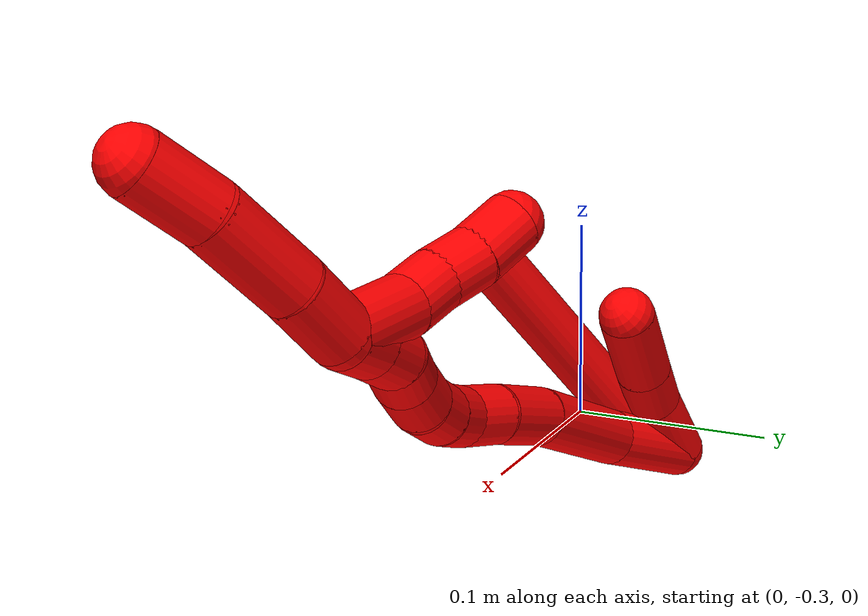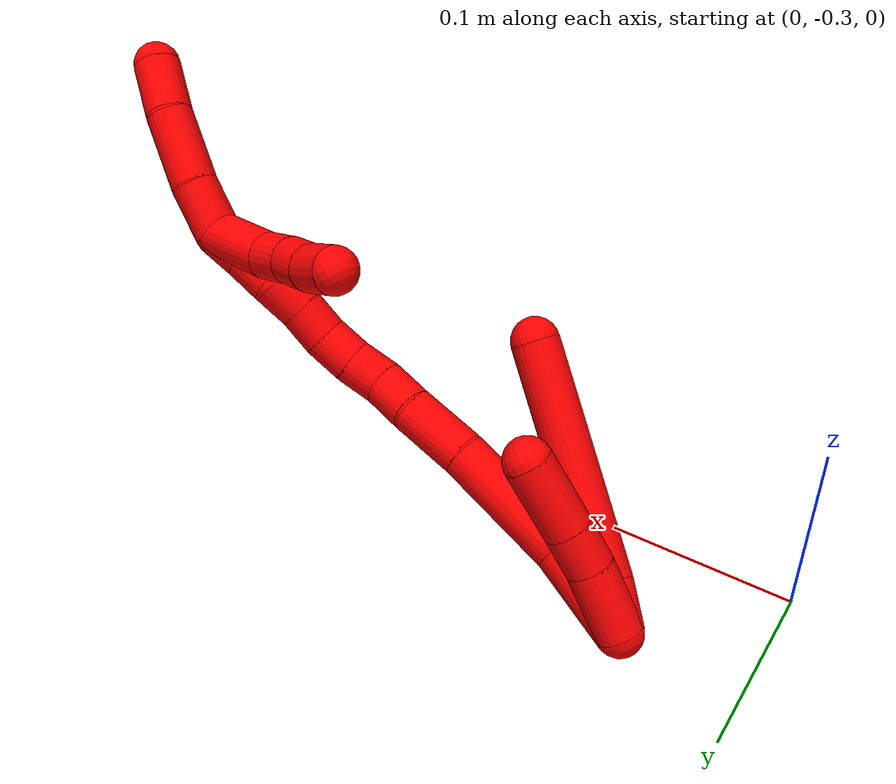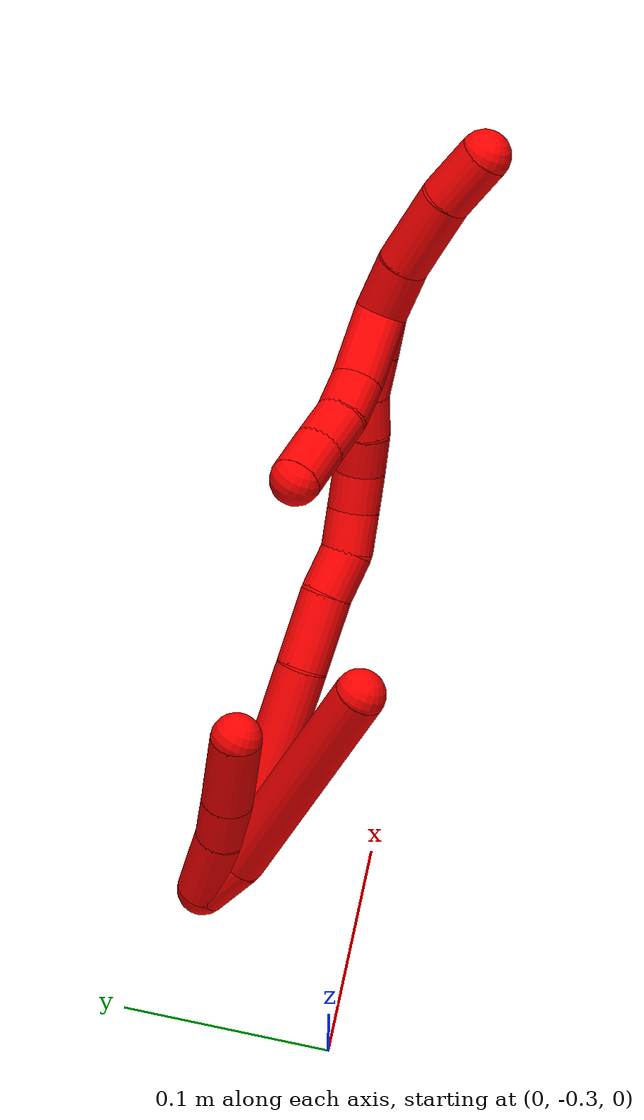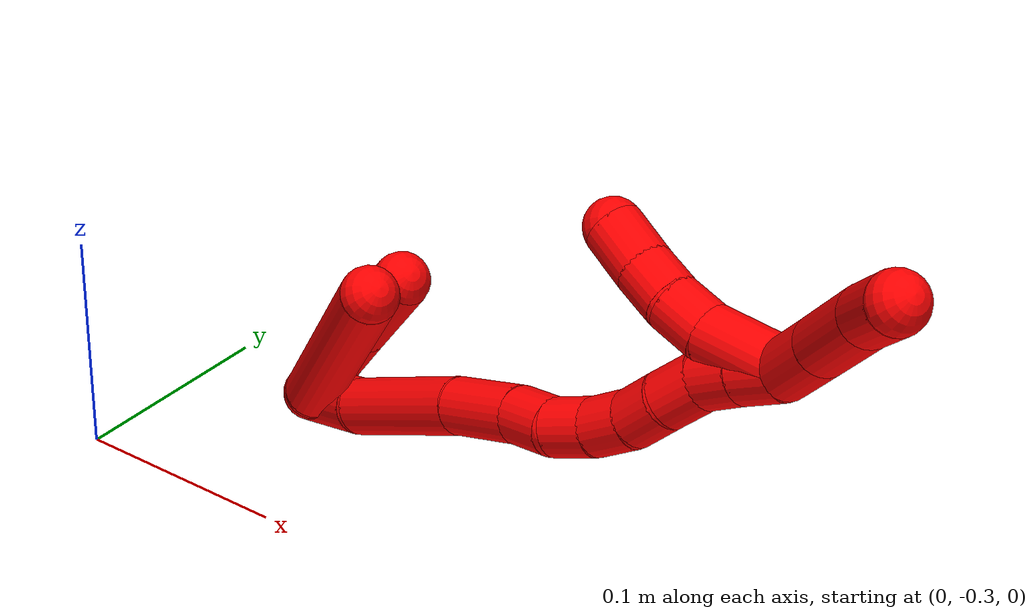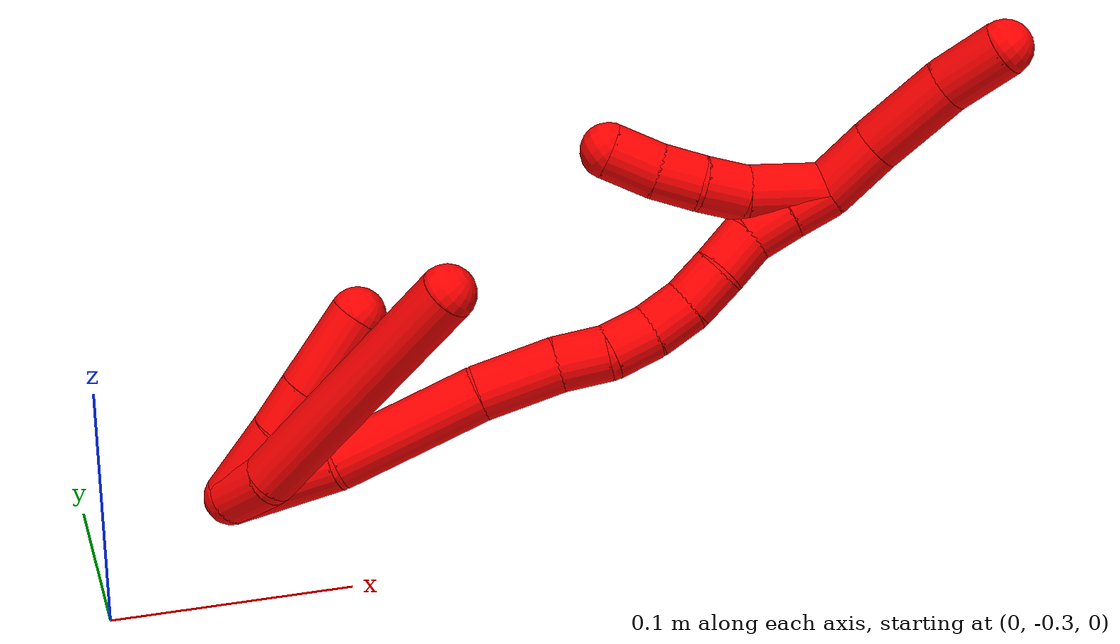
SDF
<sdf version="1.7">
 <world name="default">
  <model name="2">
   <static>0</static>
   <link name="2">
    <collision name="collision-cylinder-e_1_2_8">
     <pose>-0.002316 -0.003722 0.01188 0.303615 -0.183918 -0.028214</pose>
     <geometry><cylinder><radius>0.0125</radius><length>0.025325</length></cylinder></geometry>
     <surface>
      <friction><ode><mu>1.16</mu><mu2>1.16</mu2><slip1>0</slip1><slip2>0</slip2></ode></friction>
      <contact><ode><kp>1e+06</kp><kd>1</kd><max_vel>0</max_vel><min_depth>0.001</min_depth></ode></contact>
     </surface>
    </collision>
    <visual name="visual-cylinder-e_1_2_8">
     <pose>-0.002316 -0.003722 0.01188 0.303615 -0.183918 -0.028214</pose>
     <geometry><cylinder><radius>0.0125</radius><length>0.025325</length></cylinder></geometry>
     <material><ambient>1 0 0 1</ambient></material>
    </visual>
    <collision name="collision-cylinder-e_2_8_6">
     <pose>-0.015722 -0.006134 0.085088 -0.021346 -0.178867 0.001914</pose>
     <geometry><cylinder><radius>0.0125</radius><length>0.124675</length></cylinder></geometry>
     <surface>
      <friction><ode><mu>1.16</mu><mu2>1.16</mu2><slip1>0</slip1><slip2>0</slip2></ode></friction>
      <contact><ode><kp>1e+06</kp><kd>1</kd><max_vel>0</max_vel><min_depth>0.001</min_depth></ode></contact>
     </surface>
    </collision>
    <visual name="visual-cylinder-e_2_8_6">
     <pose>-0.015722 -0.006134 0.085088 -0.021346 -0.178867 0.001914</pose>
     <geometry><cylinder><radius>0.0125</radius><length>0.124675</length></cylinder></geometry>
     <material><ambient>1 0 0 1</ambient></material>
    </visual>
    <collision name="collision-cylinder-e_1_2_9">
     <pose>-0.00184 0.004335 0.018115 -0.23488 -0.098448 0.011624</pose>
     <geometry><cylinder><radius>0.0125</radius><length>0.037435</length></cylinder></geometry>
     <surface>
      <friction><ode><mu>1.16</mu><mu2>1.16</mu2><slip1>0</slip1><slip2>0</slip2></ode></friction>
      <contact><ode><kp>1e+06</kp><kd>1</kd><max_vel>0</max_vel><min_depth>0.001</min_depth></ode></contact>
     </surface>
    </collision>
    <visual name="visual-cylinder-e_1_2_9">
     <pose>-0.00184 0.004335 0.018115 -0.23488 -0.098448 0.011624</pose>
     <geometry><cylinder><radius>0.0125</radius><length>0.037435</length></cylinder></geometry>
     <material><ambient>1 0 0 1</ambient></material>
    </visual>
    <collision name="collision-cylinder-e_2_9_10">
     <pose>-0.004032 0.012438 0.047064 -0.334774 -0.030739 0.005194</pose>
     <geometry><cylinder><radius>0.0125</radius><length>0.02295</length></cylinder></geometry>
     <surface>
      <friction><ode><mu>1.16</mu><mu2>1.16</mu2><slip1>0</slip1><slip2>0</slip2></ode></friction>
      <contact><ode><kp>1e+06</kp><kd>1</kd><max_vel>0</max_vel><min_depth>0.001</min_depth></ode></contact>
     </surface>
    </collision>
    <visual name="visual-cylinder-e_2_9_10">
     <pose>-0.004032 0.012438 0.047064 -0.334774 -0.030739 0.005194</pose>
     <geometry><cylinder><radius>0.0125</radius><length>0.02295</length></cylinder></geometry>
     <material><ambient>1 0 0 1</ambient></material>
    </visual>
    <collision name="collision-cylinder-e_3_10_5">
     <pose>-0.004734 0.022931 0.076525 -0.346403 -0.017638 0.003086</pose>
     <geometry><cylinder><radius>0.0125</radius><length>0.039615</length></cylinder></geometry>
     <surface>
      <friction><ode><mu>1.16</mu><mu2>1.16</mu2><slip1>0</slip1><slip2>0</slip2></ode></friction>
      <contact><ode><kp>1e+06</kp><kd>1</kd><max_vel>0</max_vel><min_depth>0.001</min_depth></ode></contact>
     </surface>
    </collision>
    <visual name="visual-cylinder-e_3_10_5">
     <pose>-0.004734 0.022931 0.076525 -0.346403 -0.017638 0.003086</pose>
     <geometry><cylinder><radius>0.0125</radius><length>0.039615</length></cylinder></geometry>
     <material><ambient>1 0 0 1</ambient></material>
    </visual>
    <collision name="collision-cylinder-e_1_2_11">
     <pose>0.006323 -0.00596 0.023851 0.244886 0.251747 0.031142</pose>
     <geometry><cylinder><radius>0.0125</radius><length>0.05077</length></cylinder></geometry>
     <surface>
      <friction><ode><mu>1.16</mu><mu2>1.16</mu2><slip1>0</slip1><slip2>0</slip2></ode></friction>
      <contact><ode><kp>1e+06</kp><kd>1</kd><max_vel>0</max_vel><min_depth>0.001</min_depth></ode></contact>
     </surface>
    </collision>
    <visual name="visual-cylinder-e_1_2_11">
     <pose>0.006323 -0.00596 0.023851 0.244886 0.251747 0.031142</pose>
     <geometry><cylinder><radius>0.0125</radius><length>0.05077</length></cylinder></geometry>
     <material><ambient>1 0 0 1</ambient></material>
    </visual>
    <collision name="collision-cylinder-e_2_11_12">
     <pose>0.02432 -0.013201 0.079983 0.039636 0.346731 0.006942</pose>
     <geometry><cylinder><radius>0.0125</radius><length>0.0687</length></cylinder></geometry>
     <surface>
      <friction><ode><mu>1.16</mu><mu2>1.16</mu2><slip1>0</slip1><slip2>0</slip2></ode></friction>
      <contact><ode><kp>1e+06</kp><kd>1</kd><max_vel>0</max_vel><min_depth>0.001</min_depth></ode></contact>
     </surface>
    </collision>
    <visual name="visual-cylinder-e_2_11_12">
     <pose>0.02432 -0.013201 0.079983 0.039636 0.346731 0.006942</pose>
     <geometry><cylinder><radius>0.0125</radius><length>0.0687</length></cylinder></geometry>
     <material><ambient>1 0 0 1</ambient></material>
    </visual>
    <collision name="collision-cylinder-e_3_12_13">
     <pose>0.043946 -0.016275 0.128791 0.108115 0.446237 0.024553</pose>
     <geometry><cylinder><radius>0.0125</radius><length>0.036857</length></cylinder></geometry>
     <surface>
      <friction><ode><mu>1.16</mu><mu2>1.16</mu2><slip1>0</slip1><slip2>0</slip2></ode></friction>
      <contact><ode><kp>1e+06</kp><kd>1</kd><max_vel>0</max_vel><min_depth>0.001</min_depth></ode></contact>
     </surface>
    </collision>
    <visual name="visual-cylinder-e_3_12_13">
     <pose>0.043946 -0.016275 0.128791 0.108115 0.446237 0.024553</pose>
     <geometry><cylinder><radius>0.0125</radius><length>0.036857</length></cylinder></geometry>
     <material><ambient>1 0 0 1</ambient></material>
    </visual>
    <collision name="collision-cylinder-e_4_13_14">
     <pose>0.05666 -0.020784 0.155259 0.266616 0.432742 0.058938</pose>
     <geometry><cylinder><radius>0.0125</radius><length>0.022704</length></cylinder></geometry>
     <surface>
      <friction><ode><mu>1.16</mu><mu2>1.16</mu2><slip1>0</slip1><slip2>0</slip2></ode></friction>
      <contact><ode><kp>1e+06</kp><kd>1</kd><max_vel>0</max_vel><min_depth>0.001</min_depth></ode></contact>
     </surface>
    </collision>
    <visual name="visual-cylinder-e_4_13_14">
     <pose>0.05666 -0.020784 0.155259 0.266616 0.432742 0.058938</pose>
     <geometry><cylinder><radius>0.0125</radius><length>0.022704</length></cylinder></geometry>
     <material><ambient>1 0 0 1</ambient></material>
    </visual>
    <collision name="collision-cylinder-e_5_14_15">
     <pose>0.066389 -0.022829 0.174193 -0.074383 0.503562 -0.019143</pose>
     <geometry><cylinder><radius>0.0125</radius><length>0.020591</length></cylinder></geometry>
     <surface>
      <friction><ode><mu>1.16</mu><mu2>1.16</mu2><slip1>0</slip1><slip2>0</slip2></ode></friction>
      <contact><ode><kp>1e+06</kp><kd>1</kd><max_vel>0</max_vel><min_depth>0.001</min_depth></ode></contact>
     </surface>
    </collision>
    <visual name="visual-cylinder-e_5_14_15">
     <pose>0.066389 -0.022829 0.174193 -0.074383 0.503562 -0.019143</pose>
     <geometry><cylinder><radius>0.0125</radius><length>0.020591</length></cylinder></geometry>
     <material><ambient>1 0 0 1</ambient></material>
    </visual>
    <collision name="collision-cylinder-e_6_15_16">
     <pose>0.074813 -0.020537 0.192536 -0.171767 0.349231 -0.030374</pose>
     <geometry><cylinder><radius>0.0125</radius><length>0.0202</length></cylinder></geometry>
     <surface>
      <friction><ode><mu>1.16</mu><mu2>1.16</mu2><slip1>0</slip1><slip2>0</slip2></ode></friction>
      <contact><ode><kp>1e+06</kp><kd>1</kd><max_vel>0</max_vel><min_depth>0.001</min_depth></ode></contact>
     </surface>
    </collision>
    <visual name="visual-cylinder-e_6_15_16">
     <pose>0.074813 -0.020537 0.192536 -0.171767 0.349231 -0.030374</pose>
     <geometry><cylinder><radius>0.0125</radius><length>0.0202</length></cylinder></geometry>
     <material><ambient>1 0 0 1</ambient></material>
    </visual>
    <collision name="collision-cylinder-e_7_16_17">
     <pose>0.079846 -0.016088 0.211396 -0.288921 0.157729 -0.022992</pose>
     <geometry><cylinder><radius>0.0125</radius><length>0.020089</length></cylinder></geometry>
     <surface>
      <friction><ode><mu>1.16</mu><mu2>1.16</mu2><slip1>0</slip1><slip2>0</slip2></ode></friction>
      <contact><ode><kp>1e+06</kp><kd>1</kd><max_vel>0</max_vel><min_depth>0.001</min_depth></ode></contact>
     </surface>
    </collision>
    <visual name="visual-cylinder-e_7_16_17">
     <pose>0.079846 -0.016088 0.211396 -0.288921 0.157729 -0.022992</pose>
     <geometry><cylinder><radius>0.0125</radius><length>0.020089</length></cylinder></geometry>
     <material><ambient>1 0 0 1</ambient></material>
    </visual>
    <collision name="collision-cylinder-e_8_17_18">
     <pose>0.083956 -0.009471 0.229854 -0.400678 0.25489 -0.052029</pose>
     <geometry><cylinder><radius>0.0125</radius><length>0.020086</length></cylinder></geometry>
     <surface>
      <friction><ode><mu>1.16</mu><mu2>1.16</mu2><slip1>0</slip1><slip2>0</slip2></ode></friction>
      <contact><ode><kp>1e+06</kp><kd>1</kd><max_vel>0</max_vel><min_depth>0.001</min_depth></ode></contact>
     </surface>
    </collision>
    <visual name="visual-cylinder-e_8_17_18">
     <pose>0.083956 -0.009471 0.229854 -0.400678 0.25489 -0.052029</pose>
     <geometry><cylinder><radius>0.0125</radius><length>0.020086</length></cylinder></geometry>
     <material><ambient>1 0 0 1</ambient></material>
    </visual>
    <collision name="collision-cylinder-e_9_18_19">
     <pose>0.089905 -0.004904 0.248168 -0.082779 0.348634 -0.014586</pose>
     <geometry><cylinder><radius>0.0125</radius><length>0.02</length></cylinder></geometry>
     <surface>
      <friction><ode><mu>1.16</mu><mu2>1.16</mu2><slip1>0</slip1><slip2>0</slip2></ode></friction>
      <contact><ode><kp>1e+06</kp><kd>1</kd><max_vel>0</max_vel><min_depth>0.001</min_depth></ode></contact>
     </surface>
    </collision>
    <visual name="visual-cylinder-e_9_18_19">
     <pose>0.089905 -0.004904 0.248168 -0.082779 0.348634 -0.014586</pose>
     <geometry><cylinder><radius>0.0125</radius><length>0.02</length></cylinder></geometry>
     <material><ambient>1 0 0 1</ambient></material>
    </visual>
    <collision name="collision-cylinder-e_10_19_1">
     <pose>0.097227 -0.003487 0.266719 -0.069519 0.401205 -0.014141</pose>
     <geometry><cylinder><radius>0.0125</radius><length>0.020002</length></cylinder></geometry>
     <surface>
      <friction><ode><mu>1.16</mu><mu2>1.16</mu2><slip1>0</slip1><slip2>0</slip2></ode></friction>
      <contact><ode><kp>1e+06</kp><kd>1</kd><max_vel>0</max_vel><min_depth>0.001</min_depth></ode></contact>
     </surface>
    </collision>
    <visual name="visual-cylinder-e_10_19_1">
     <pose>0.097227 -0.003487 0.266719 -0.069519 0.401205 -0.014141</pose>
     <geometry><cylinder><radius>0.0125</radius><length>0.020002</length></cylinder></geometry>
     <material><ambient>1 0 0 1</ambient></material>
    </visual>
    <collision name="collision-cylinder-e_1_1_20">
     <pose>0.089226 0.002253 0.262861 -2.7688 -0.704582 2.19364</pose>
     <geometry><cylinder><radius>0.0125</radius><length>0.036765</length></cylinder></geometry>
     <surface>
      <friction><ode><mu>1.16</mu><mu2>1.16</mu2><slip1>0</slip1><slip2>0</slip2></ode></friction>
      <contact><ode><kp>1e+06</kp><kd>1</kd><max_vel>0</max_vel><min_depth>0.001</min_depth></ode></contact>
     </surface>
    </collision>
    <visual name="visual-cylinder-e_1_1_20">
     <pose>0.089226 0.002253 0.262861 -2.7688 -0.704582 2.19364</pose>
     <geometry><cylinder><radius>0.0125</radius><length>0.036765</length></cylinder></geometry>
     <material><ambient>1 0 0 1</ambient></material>
    </visual>
    <collision name="collision-cylinder-e_2_20_21">
     <pose>0.070108 0.011787 0.24434 -2.46114 -0.796949 1.74329</pose>
     <geometry><cylinder><radius>0.0125</radius><length>0.020163</length></cylinder></geometry>
     <surface>
      <friction><ode><mu>1.16</mu><mu2>1.16</mu2><slip1>0</slip1><slip2>0</slip2></ode></friction>
      <contact><ode><kp>1e+06</kp><kd>1</kd><max_vel>0</max_vel><min_depth>0.001</min_depth></ode></contact>
     </surface>
    </collision>
    <visual name="visual-cylinder-e_2_20_21">
     <pose>0.070108 0.011787 0.24434 -2.46114 -0.796949 1.74329</pose>
     <geometry><cylinder><radius>0.0125</radius><length>0.020163</length></cylinder></geometry>
     <material><ambient>1 0 0 1</ambient></material>
    </visual>
    <collision name="collision-cylinder-e_3_21_22">
     <pose>0.056888 0.022025 0.233294 -2.33549 -0.641566 1.3239</pose>
     <geometry><cylinder><radius>0.0125</radius><length>0.020084</length></cylinder></geometry>
     <surface>
      <friction><ode><mu>1.16</mu><mu2>1.16</mu2><slip1>0</slip1><slip2>0</slip2></ode></friction>
      <contact><ode><kp>1e+06</kp><kd>1</kd><max_vel>0</max_vel><min_depth>0.001</min_depth></ode></contact>
     </surface>
    </collision>
    <visual name="visual-cylinder-e_3_21_22">
     <pose>0.056888 0.022025 0.233294 -2.33549 -0.641566 1.3239</pose>
     <geometry><cylinder><radius>0.0125</radius><length>0.020084</length></cylinder></geometry>
     <material><ambient>1 0 0 1</ambient></material>
    </visual>
    <collision name="collision-cylinder-e_4_22_4">
     <pose>0.043131 0.034722 0.222766 -2.19445 -0.739735 1.29537</pose>
     <geometry><cylinder><radius>0.0125</radius><length>0.022988</length></cylinder></geometry>
     <surface>
      <friction><ode><mu>1.16</mu><mu2>1.16</mu2><slip1>0</slip1><slip2>0</slip2></ode></friction>
      <contact><ode><kp>1e+06</kp><kd>1</kd><max_vel>0</max_vel><min_depth>0.001</min_depth></ode></contact>
     </surface>
    </collision>
    <visual name="visual-cylinder-e_4_22_4">
     <pose>0.043131 0.034722 0.222766 -2.19445 -0.739735 1.29537</pose>
     <geometry><cylinder><radius>0.0125</radius><length>0.022988</length></cylinder></geometry>
     <material><ambient>1 0 0 1</ambient></material>
    </visual>
    <collision name="collision-cylinder-e_1_1_23">
     <pose>0.100653 -0.001533 0.290502 -0.089777 -0.032677 0.001468</pose>
     <geometry><cylinder><radius>0.0125</radius><length>0.02933</length></cylinder></geometry>
     <surface>
      <friction><ode><mu>1.16</mu><mu2>1.16</mu2><slip1>0</slip1><slip2>0</slip2></ode></friction>
      <contact><ode><kp>1e+06</kp><kd>1</kd><max_vel>0</max_vel><min_depth>0.001</min_depth></ode></contact>
     </surface>
    </collision>
    <visual name="visual-cylinder-e_1_1_23">
     <pose>0.100653 -0.001533 0.290502 -0.089777 -0.032677 0.001468</pose>
     <geometry><cylinder><radius>0.0125</radius><length>0.02933</length></cylinder></geometry>
     <material><ambient>1 0 0 1</ambient></material>
    </visual>
    <collision name="collision-cylinder-e_2_23_24">
     <pose>0.097981 -0.000544 0.325457 0.015935 -0.107293 -0.000856</pose>
     <geometry><cylinder><radius>0.0125</radius><length>0.040954</length></cylinder></geometry>
     <surface>
      <friction><ode><mu>1.16</mu><mu2>1.16</mu2><slip1>0</slip1><slip2>0</slip2></ode></friction>
      <contact><ode><kp>1e+06</kp><kd>1</kd><max_vel>0</max_vel><min_depth>0.001</min_depth></ode></contact>
     </surface>
    </collision>
    <visual name="visual-cylinder-e_2_23_24">
     <pose>0.097981 -0.000544 0.325457 0.015935 -0.107293 -0.000856</pose>
     <geometry><cylinder><radius>0.0125</radius><length>0.040954</length></cylinder></geometry>
     <material><ambient>1 0 0 1</ambient></material>
    </visual>
    <collision name="collision-cylinder-e_3_24_3">
     <pose>0.093853 -0.003369 0.360331 0.170613 -0.130605 -0.011184</pose>
     <geometry><cylinder><radius>0.0125</radius><length>0.029716</length></cylinder></geometry>
     <surface>
      <friction><ode><mu>1.16</mu><mu2>1.16</mu2><slip1>0</slip1><slip2>0</slip2></ode></friction>
      <contact><ode><kp>1e+06</kp><kd>1</kd><max_vel>0</max_vel><min_depth>0.001</min_depth></ode></contact>
     </surface>
    </collision>
    <visual name="visual-cylinder-e_3_24_3">
     <pose>0.093853 -0.003369 0.360331 0.170613 -0.130605 -0.011184</pose>
     <geometry><cylinder><radius>0.0125</radius><length>0.029716</length></cylinder></geometry>
     <material><ambient>1 0 0 1</ambient></material>
    </visual>
    <collision name="collision-sphere-3">
     <pose>0.091918 -0.005871 0.374849 0 -0 0</pose>
     <geometry><sphere><radius>0.0125</radius></sphere></geometry>
     <surface>
      <friction><ode><mu>1.16</mu><mu2>1.16</mu2><slip1>0</slip1><slip2>0</slip2></ode></friction>
      <contact><ode><kp>1e+06</kp><kd>1</kd><max_vel>0</max_vel><min_depth>0.001</min_depth></ode></contact>
     </surface>
    </collision>
    <visual name="visual-sphere-3">
     <pose>0.091918 -0.005871 0.374849 0 -0 0</pose>
     <geometry><sphere><radius>0.0125</radius></sphere></geometry>
     <material><ambient>1 0 0 1</ambient></material>
    </visual>
    <collision name="collision-sphere-24">
     <pose>0.095788 -0.000868 0.345813 0 -0 0</pose>
     <geometry><sphere><radius>0.0125</radius></sphere></geometry>
     <surface>
      <friction><ode><mu>1.16</mu><mu2>1.16</mu2><slip1>0</slip1><slip2>0</slip2></ode></friction>
      <contact><ode><kp>1e+06</kp><kd>1</kd><max_vel>0</max_vel><min_depth>0.001</min_depth></ode></contact>
     </surface>
    </collision>
    <visual name="visual-sphere-24">
     <pose>0.095788 -0.000868 0.345813 0 -0 0</pose>
     <geometry><sphere><radius>0.0125</radius></sphere></geometry>
     <material><ambient>1 0 0 1</ambient></material>
    </visual>
    <collision name="collision-sphere-23">
     <pose>0.100174 -0.000219 0.3051 0 -0 0</pose>
     <geometry><sphere><radius>0.0125</radius></sphere></geometry>
     <surface>
      <friction><ode><mu>1.16</mu><mu2>1.16</mu2><slip1>0</slip1><slip2>0</slip2></ode></friction>
      <contact><ode><kp>1e+06</kp><kd>1</kd><max_vel>0</max_vel><min_depth>0.001</min_depth></ode></contact>
     </surface>
    </collision>
    <visual name="visual-sphere-23">
     <pose>0.100174 -0.000219 0.3051 0 -0 0</pose>
     <geometry><sphere><radius>0.0125</radius></sphere></geometry>
     <material><ambient>1 0 0 1</ambient></material>
    </visual>
    <collision name="collision-sphere-4">
     <pose>0.035383 0.041614 0.217808 0 -0 0</pose>
     <geometry><sphere><radius>0.0125</radius></sphere></geometry>
     <surface>
      <friction><ode><mu>1.16</mu><mu2>1.16</mu2><slip1>0</slip1><slip2>0</slip2></ode></friction>
      <contact><ode><kp>1e+06</kp><kd>1</kd><max_vel>0</max_vel><min_depth>0.001</min_depth></ode></contact>
     </surface>
    </collision>
    <visual name="visual-sphere-4">
     <pose>0.035383 0.041614 0.217808 0 -0 0</pose>
     <geometry><sphere><radius>0.0125</radius></sphere></geometry>
     <material><ambient>1 0 0 1</ambient></material>
    </visual>
    <collision name="collision-sphere-22">
     <pose>0.050879 0.027831 0.227724 0 -0 0</pose>
     <geometry><sphere><radius>0.0125</radius></sphere></geometry>
     <surface>
      <friction><ode><mu>1.16</mu><mu2>1.16</mu2><slip1>0</slip1><slip2>0</slip2></ode></friction>
      <contact><ode><kp>1e+06</kp><kd>1</kd><max_vel>0</max_vel><min_depth>0.001</min_depth></ode></contact>
     </surface>
    </collision>
    <visual name="visual-sphere-22">
     <pose>0.050879 0.027831 0.227724 0 -0 0</pose>
     <geometry><sphere><radius>0.0125</radius></sphere></geometry>
     <material><ambient>1 0 0 1</ambient></material>
    </visual>
    <collision name="collision-sphere-21">
     <pose>0.062898 0.01622 0.238864 0 -0 0</pose>
     <geometry><sphere><radius>0.0125</radius></sphere></geometry>
     <surface>
      <friction><ode><mu>1.16</mu><mu2>1.16</mu2><slip1>0</slip1><slip2>0</slip2></ode></friction>
      <contact><ode><kp>1e+06</kp><kd>1</kd><max_vel>0</max_vel><min_depth>0.001</min_depth></ode></contact>
     </surface>
    </collision>
    <visual name="visual-sphere-21">
     <pose>0.062898 0.01622 0.238864 0 -0 0</pose>
     <geometry><sphere><radius>0.0125</radius></sphere></geometry>
     <material><ambient>1 0 0 1</ambient></material>
    </visual>
    <collision name="collision-sphere-20">
     <pose>0.077319 0.007354 0.249817 0 -0 0</pose>
     <geometry><sphere><radius>0.0125</radius></sphere></geometry>
     <surface>
      <friction><ode><mu>1.16</mu><mu2>1.16</mu2><slip1>0</slip1><slip2>0</slip2></ode></friction>
      <contact><ode><kp>1e+06</kp><kd>1</kd><max_vel>0</max_vel><min_depth>0.001</min_depth></ode></contact>
     </surface>
    </collision>
    <visual name="visual-sphere-20">
     <pose>0.077319 0.007354 0.249817 0 -0 0</pose>
     <geometry><sphere><radius>0.0125</radius></sphere></geometry>
     <material><ambient>1 0 0 1</ambient></material>
    </visual>
    <collision name="collision-sphere-5">
     <pose>-0.005083 0.029655 0.095153 0 -0 0</pose>
     <geometry><sphere><radius>0.0125</radius></sphere></geometry>
     <surface>
      <friction><ode><mu>1.16</mu><mu2>1.16</mu2><slip1>0</slip1><slip2>0</slip2></ode></friction>
      <contact><ode><kp>1e+06</kp><kd>1</kd><max_vel>0</max_vel><min_depth>0.001</min_depth></ode></contact>
     </surface>
    </collision>
    <visual name="visual-sphere-5">
     <pose>-0.005083 0.029655 0.095153 0 -0 0</pose>
     <geometry><sphere><radius>0.0125</radius></sphere></geometry>
     <material><ambient>1 0 0 1</ambient></material>
    </visual>
    <collision name="collision-sphere-10">
     <pose>-0.004385 0.016207 0.057897 0 -0 0</pose>
     <geometry><sphere><radius>0.0125</radius></sphere></geometry>
     <surface>
      <friction><ode><mu>1.16</mu><mu2>1.16</mu2><slip1>0</slip1><slip2>0</slip2></ode></friction>
      <contact><ode><kp>1e+06</kp><kd>1</kd><max_vel>0</max_vel><min_depth>0.001</min_depth></ode></contact>
     </surface>
    </collision>
    <visual name="visual-sphere-10">
     <pose>-0.004385 0.016207 0.057897 0 -0 0</pose>
     <geometry><sphere><radius>0.0125</radius></sphere></geometry>
     <material><ambient>1 0 0 1</ambient></material>
    </visual>
    <collision name="collision-sphere-6">
     <pose>-0.026813 -0.004825 0.146417 0 -0 0</pose>
     <geometry><sphere><radius>0.0125</radius></sphere></geometry>
     <surface>
      <friction><ode><mu>1.16</mu><mu2>1.16</mu2><slip1>0</slip1><slip2>0</slip2></ode></friction>
      <contact><ode><kp>1e+06</kp><kd>1</kd><max_vel>0</max_vel><min_depth>0.001</min_depth></ode></contact>
     </surface>
    </collision>
    <visual name="visual-sphere-6">
     <pose>-0.026813 -0.004825 0.146417 0 -0 0</pose>
     <geometry><sphere><radius>0.0125</radius></sphere></geometry>
     <material><ambient>1 0 0 1</ambient></material>
    </visual>
    <collision name="collision-sphere-9">
     <pose>-0.003679 0.00867 0.036231 0 -0 0</pose>
     <geometry><sphere><radius>0.0125</radius></sphere></geometry>
     <surface>
      <friction><ode><mu>1.16</mu><mu2>1.16</mu2><slip1>0</slip1><slip2>0</slip2></ode></friction>
      <contact><ode><kp>1e+06</kp><kd>1</kd><max_vel>0</max_vel><min_depth>0.001</min_depth></ode></contact>
     </surface>
    </collision>
    <visual name="visual-sphere-9">
     <pose>-0.003679 0.00867 0.036231 0 -0 0</pose>
     <geometry><sphere><radius>0.0125</radius></sphere></geometry>
     <material><ambient>1 0 0 1</ambient></material>
    </visual>
    <collision name="collision-sphere-2">
     <geometry><sphere><radius>0.0125</radius></sphere></geometry>
     <surface>
      <friction><ode><mu>1.16</mu><mu2>1.16</mu2><slip1>0</slip1><slip2>0</slip2></ode></friction>
      <contact><ode><kp>1e+06</kp><kd>1</kd><max_vel>0</max_vel><min_depth>0.001</min_depth></ode></contact>
     </surface>
    </collision>
    <visual name="visual-sphere-2">
     <geometry><sphere><radius>0.0125</radius></sphere></geometry>
     <material><ambient>1 0 0 1</ambient></material>
    </visual>
    <collision name="collision-sphere-19">
     <pose>0.093321 -0.004127 0.257535 0 -0 0</pose>
     <geometry><sphere><radius>0.0125</radius></sphere></geometry>
     <surface>
      <friction><ode><mu>1.16</mu><mu2>1.16</mu2><slip1>0</slip1><slip2>0</slip2></ode></friction>
      <contact><ode><kp>1e+06</kp><kd>1</kd><max_vel>0</max_vel><min_depth>0.001</min_depth></ode></contact>
     </surface>
    </collision>
    <visual name="visual-sphere-19">
     <pose>0.093321 -0.004127 0.257535 0 -0 0</pose>
     <geometry><sphere><radius>0.0125</radius></sphere></geometry>
     <material><ambient>1 0 0 1</ambient></material>
    </visual>
    <collision name="collision-sphere-8">
     <pose>-0.004632 -0.007444 0.023759 0 -0 0</pose>
     <geometry><sphere><radius>0.0125</radius></sphere></geometry>
     <surface>
      <friction><ode><mu>1.16</mu><mu2>1.16</mu2><slip1>0</slip1><slip2>0</slip2></ode></friction>
      <contact><ode><kp>1e+06</kp><kd>1</kd><max_vel>0</max_vel><min_depth>0.001</min_depth></ode></contact>
     </surface>
    </collision>
    <visual name="visual-sphere-8">
     <pose>-0.004632 -0.007444 0.023759 0 -0 0</pose>
     <geometry><sphere><radius>0.0125</radius></sphere></geometry>
     <material><ambient>1 0 0 1</ambient></material>
    </visual>
    <collision name="collision-sphere-11">
     <pose>0.012647 -0.011921 0.047703 0 -0 0</pose>
     <geometry><sphere><radius>0.0125</radius></sphere></geometry>
     <surface>
      <friction><ode><mu>1.16</mu><mu2>1.16</mu2><slip1>0</slip1><slip2>0</slip2></ode></friction>
      <contact><ode><kp>1e+06</kp><kd>1</kd><max_vel>0</max_vel><min_depth>0.001</min_depth></ode></contact>
     </surface>
    </collision>
    <visual name="visual-sphere-11">
     <pose>0.012647 -0.011921 0.047703 0 -0 0</pose>
     <geometry><sphere><radius>0.0125</radius></sphere></geometry>
     <material><ambient>1 0 0 1</ambient></material>
    </visual>
    <collision name="collision-sphere-12">
     <pose>0.035993 -0.014481 0.112263 0 -0 0</pose>
     <geometry><sphere><radius>0.0125</radius></sphere></geometry>
     <surface>
      <friction><ode><mu>1.16</mu><mu2>1.16</mu2><slip1>0</slip1><slip2>0</slip2></ode></friction>
      <contact><ode><kp>1e+06</kp><kd>1</kd><max_vel>0</max_vel><min_depth>0.001</min_depth></ode></contact>
     </surface>
    </collision>
    <visual name="visual-sphere-12">
     <pose>0.035993 -0.014481 0.112263 0 -0 0</pose>
     <geometry><sphere><radius>0.0125</radius></sphere></geometry>
     <material><ambient>1 0 0 1</ambient></material>
    </visual>
    <collision name="collision-sphere-13">
     <pose>0.051899 -0.018069 0.145318 0 -0 0</pose>
     <geometry><sphere><radius>0.0125</radius></sphere></geometry>
     <surface>
      <friction><ode><mu>1.16</mu><mu2>1.16</mu2><slip1>0</slip1><slip2>0</slip2></ode></friction>
      <contact><ode><kp>1e+06</kp><kd>1</kd><max_vel>0</max_vel><min_depth>0.001</min_depth></ode></contact>
     </surface>
    </collision>
    <visual name="visual-sphere-13">
     <pose>0.051899 -0.018069 0.145318 0 -0 0</pose>
     <geometry><sphere><radius>0.0125</radius></sphere></geometry>
     <material><ambient>1 0 0 1</ambient></material>
    </visual>
    <collision name="collision-sphere-14">
     <pose>0.061421 -0.023499 0.165201 0 -0 0</pose>
     <geometry><sphere><radius>0.0125</radius></sphere></geometry>
     <surface>
      <friction><ode><mu>1.16</mu><mu2>1.16</mu2><slip1>0</slip1><slip2>0</slip2></ode></friction>
      <contact><ode><kp>1e+06</kp><kd>1</kd><max_vel>0</max_vel><min_depth>0.001</min_depth></ode></contact>
     </surface>
    </collision>
    <visual name="visual-sphere-14">
     <pose>0.061421 -0.023499 0.165201 0 -0 0</pose>
     <geometry><sphere><radius>0.0125</radius></sphere></geometry>
     <material><ambient>1 0 0 1</ambient></material>
    </visual>
    <collision name="collision-sphere-15">
     <pose>0.071357 -0.022159 0.183186 0 -0 0</pose>
     <geometry><sphere><radius>0.0125</radius></sphere></geometry>
     <surface>
      <friction><ode><mu>1.16</mu><mu2>1.16</mu2><slip1>0</slip1><slip2>0</slip2></ode></friction>
      <contact><ode><kp>1e+06</kp><kd>1</kd><max_vel>0</max_vel><min_depth>0.001</min_depth></ode></contact>
     </surface>
    </collision>
    <visual name="visual-sphere-15">
     <pose>0.071357 -0.022159 0.183186 0 -0 0</pose>
     <geometry><sphere><radius>0.0125</radius></sphere></geometry>
     <material><ambient>1 0 0 1</ambient></material>
    </visual>
    <collision name="collision-sphere-16">
     <pose>0.078269 -0.018915 0.201887 0 -0 0</pose>
     <geometry><sphere><radius>0.0125</radius></sphere></geometry>
     <surface>
      <friction><ode><mu>1.16</mu><mu2>1.16</mu2><slip1>0</slip1><slip2>0</slip2></ode></friction>
      <contact><ode><kp>1e+06</kp><kd>1</kd><max_vel>0</max_vel><min_depth>0.001</min_depth></ode></contact>
     </surface>
    </collision>
    <visual name="visual-sphere-16">
     <pose>0.078269 -0.018915 0.201887 0 -0 0</pose>
     <geometry><sphere><radius>0.0125</radius></sphere></geometry>
     <material><ambient>1 0 0 1</ambient></material>
    </visual>
    <collision name="collision-sphere-17">
     <pose>0.081424 -0.013262 0.220905 0 -0 0</pose>
     <geometry><sphere><radius>0.0125</radius></sphere></geometry>
     <surface>
      <friction><ode><mu>1.16</mu><mu2>1.16</mu2><slip1>0</slip1><slip2>0</slip2></ode></friction>
      <contact><ode><kp>1e+06</kp><kd>1</kd><max_vel>0</max_vel><min_depth>0.001</min_depth></ode></contact>
     </surface>
    </collision>
    <visual name="visual-sphere-17">
     <pose>0.081424 -0.013262 0.220905 0 -0 0</pose>
     <geometry><sphere><radius>0.0125</radius></sphere></geometry>
     <material><ambient>1 0 0 1</ambient></material>
    </visual>
    <collision name="collision-sphere-18">
     <pose>0.086488 -0.005681 0.238802 0 -0 0</pose>
     <geometry><sphere><radius>0.0125</radius></sphere></geometry>
     <surface>
      <friction><ode><mu>1.16</mu><mu2>1.16</mu2><slip1>0</slip1><slip2>0</slip2></ode></friction>
      <contact><ode><kp>1e+06</kp><kd>1</kd><max_vel>0</max_vel><min_depth>0.001</min_depth></ode></contact>
     </surface>
    </collision>
    <visual name="visual-sphere-18">
     <pose>0.086488 -0.005681 0.238802 0 -0 0</pose>
     <geometry><sphere><radius>0.0125</radius></sphere></geometry>
     <material><ambient>1 0 0 1</ambient></material>
    </visual>
    <collision name="collision-sphere-1">
     <pose>0.101132 -0.002848 0.275904 0 -0 0</pose>
     <geometry><sphere><radius>0.0125</radius></sphere></geometry>
     <surface>
      <friction><ode><mu>1.16</mu><mu2>1.16</mu2><slip1>0</slip1><slip2>0</slip2></ode></friction>
      <contact><ode><kp>1e+06</kp><kd>1</kd><max_vel>0</max_vel><min_depth>0.001</min_depth></ode></contact>
     </surface>
    </collision>
    <visual name="visual-sphere-1">
     <pose>0.101132 -0.002848 0.275904 0 -0 0</pose>
     <geometry><sphere><radius>0.0125</radius></sphere></geometry>
     <material><ambient>1 0 0 1</ambient></material>
    </visual>
    <inertial>
     <pose>0.038698 -0.002609 0.152358 0 -0 0</pose>
     <mass>0.75</mass>
     <inertia>
      <ixx>0.000255</ixx>
      <ixy>0</ixy>
      <ixz>0</ixz>
      <iyy>0.000273</iyy>
      <iyz>0</iyz>
      <izz>5.6e-05</izz>
     </inertia>
    </inertial>
   </link>
   <pose>0.062516 -0.225027 0.011736 0.683269 0.558025 0.61293</pose>
  </model>
 </world>
</sdf>
